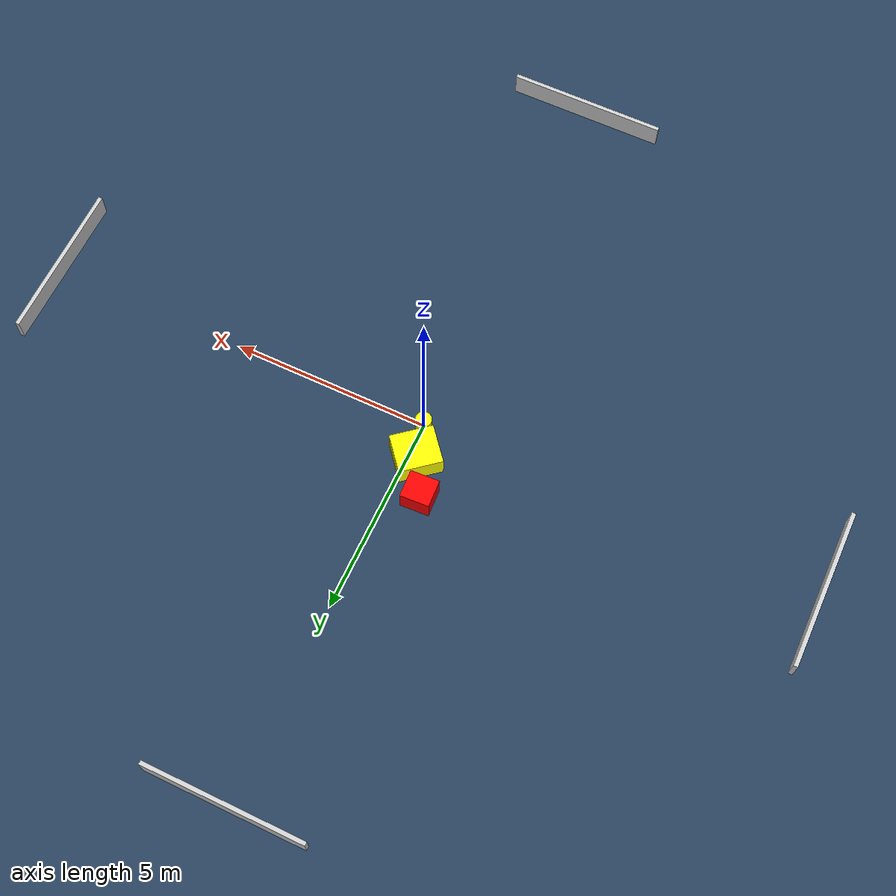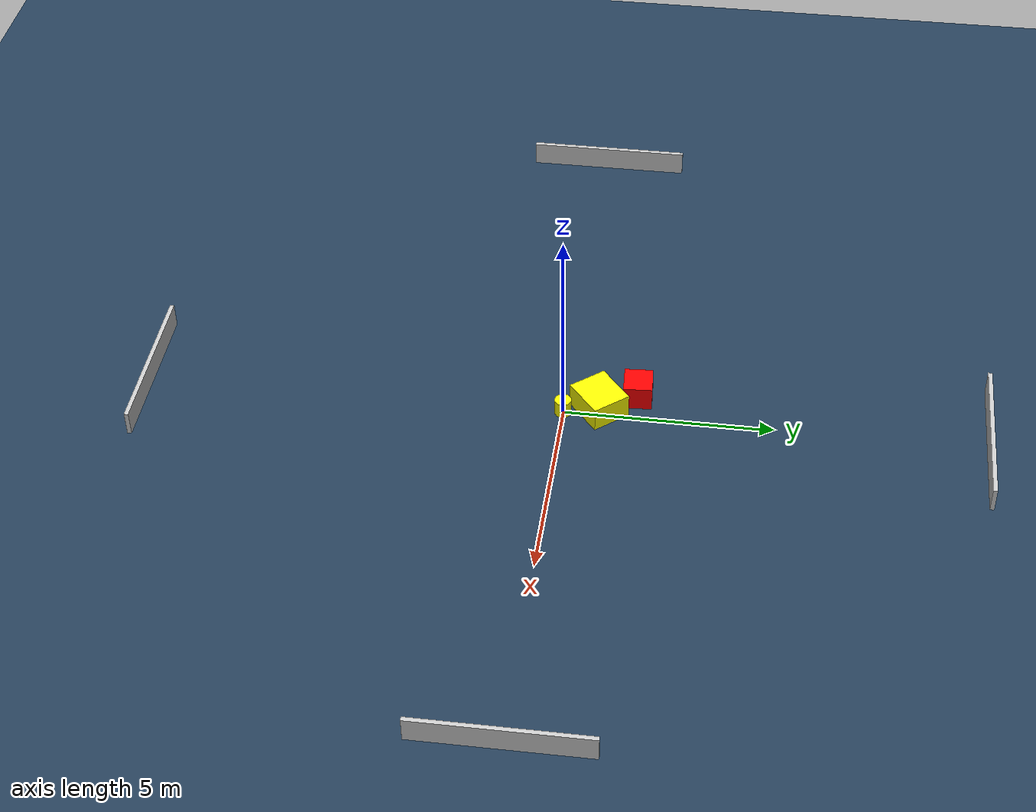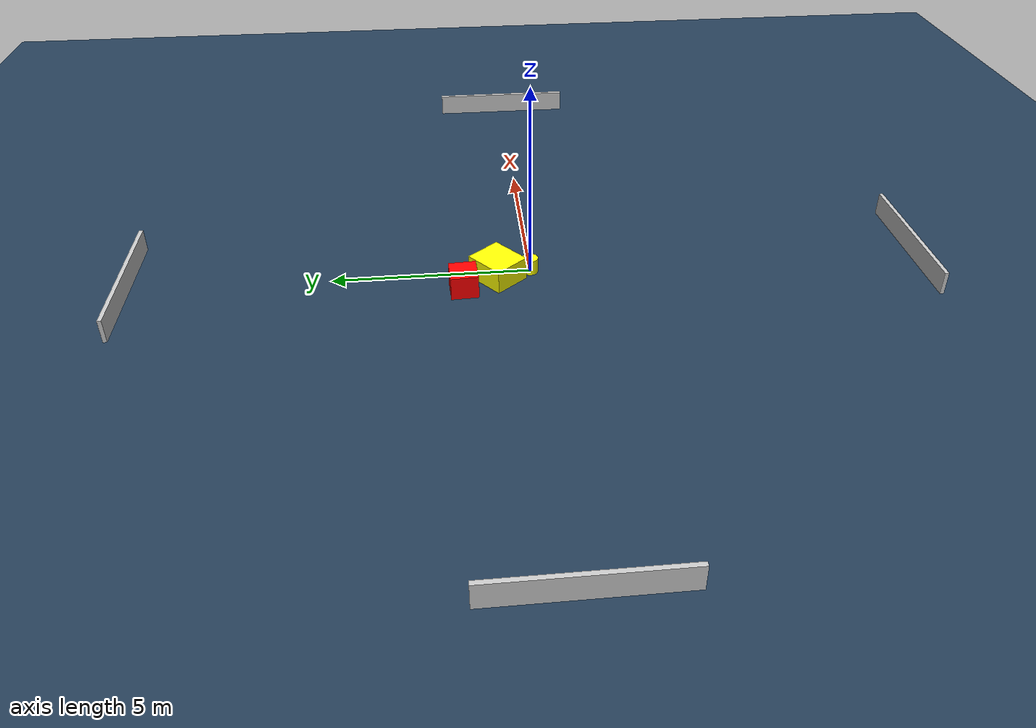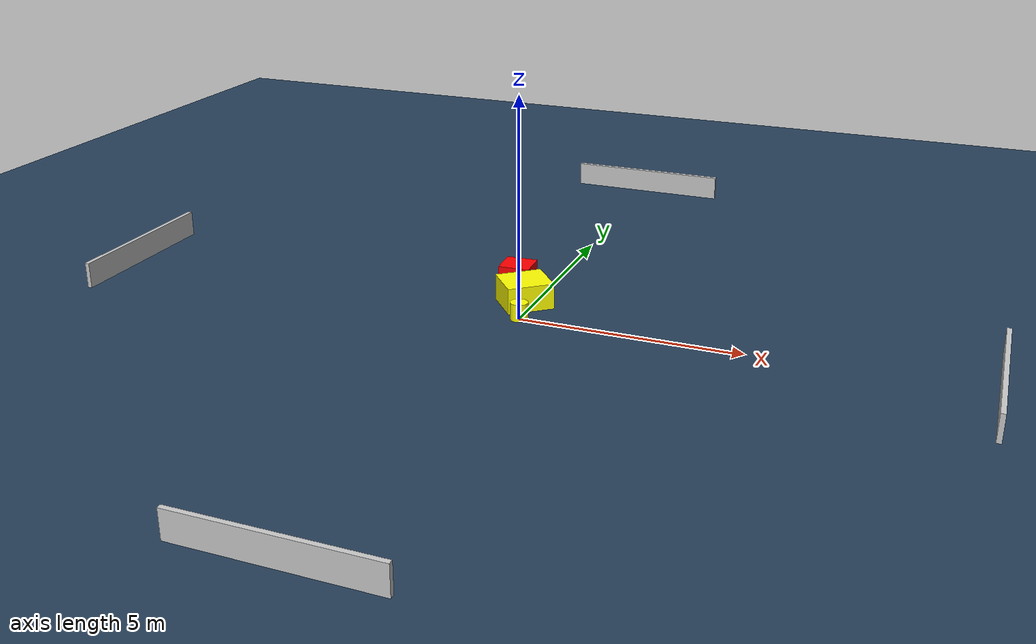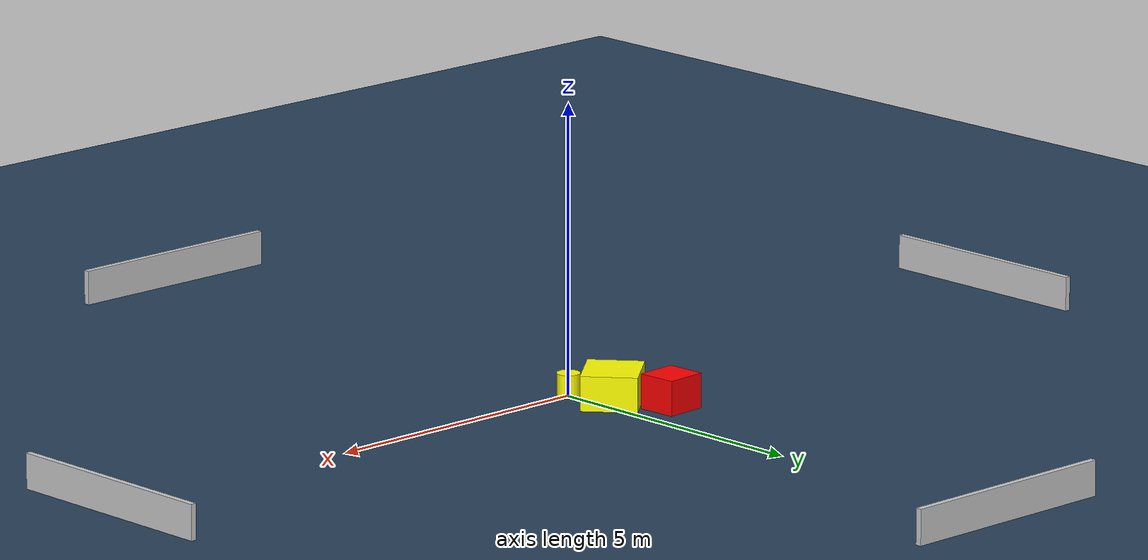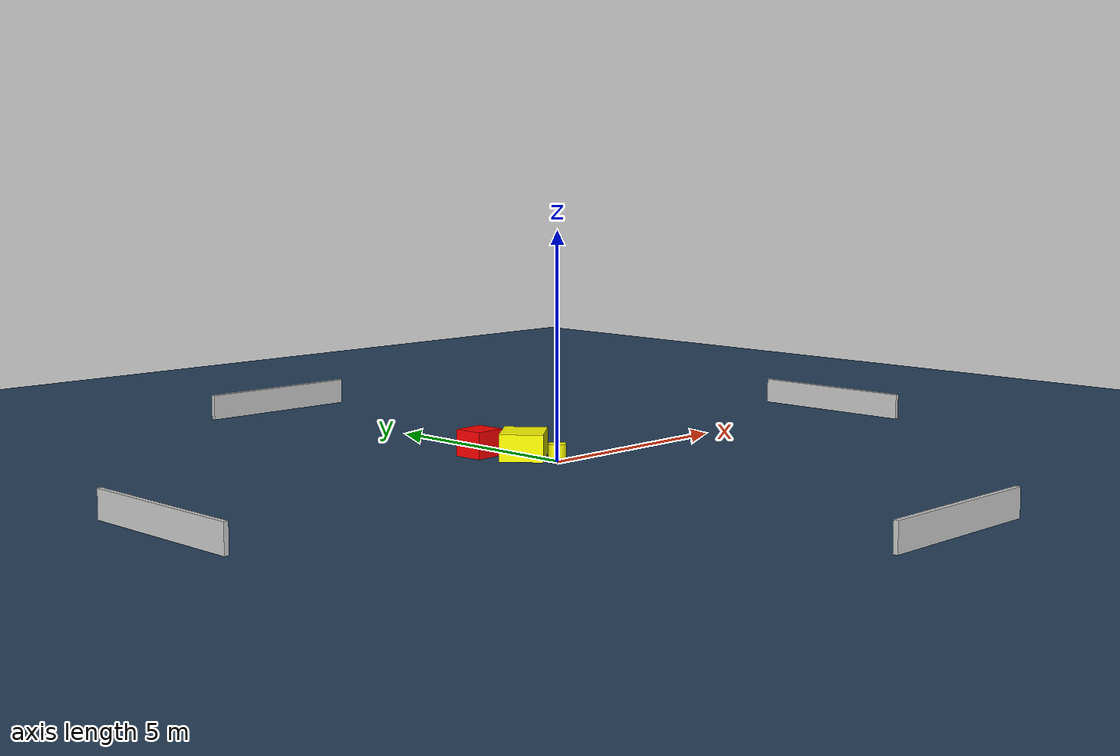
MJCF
<?xml version="1.0" ?>
<mujoco model="generated_environment">
  <option timestep="0.01" integrator="RK4" cone="elliptic"/>
  <default>
    <geom density="1"/>
  </default>
  <asset>
    <texture builtin="gradient" height="3072" name="skybox" rgb1="0.3 0.5 0.7" rgb2="0 0 0" type="skybox" width="512"/>
    <texture builtin="checker" height="300" name="groundplane" rgb1="0.2 0.3 0.4" rgb2="0.1 0.2 0.3" type="2d" width="300"/>
    <material name="groundplane" reflectance="0.2" texrepeat="5 5" texture="groundplane"/>
  </asset>
  <worldbody>
    <light dir="0 0 -1" directional="true" pos="0 0 1.5"/>
    <geom condim="3" friction="0.5 0.005 0.001" material="groundplane" name="floor" pos="0 0 0" size="0 0 0.05" type="plane"/>
    <body name="walls">
      <geom name="wall_1" condim="4" pos="-10.0 0.0 0.3" rgba="0.800000011920929 0.800000011920929 0.800000011920929 1.0" size="0.05 2.0 0.3" type="box"/>
      <geom name="wall_2" condim="4" pos="10.0 0.0 0.3" rgba="0.800000011920929 0.800000011920929 0.800000011920929 1.0" size="0.05 2.0 0.3" type="box"/>
      <geom name="wall_3" condim="4" pos="0.0 -10.0 0.3" rgba="0.800000011920929 0.800000011920929 0.800000011920929 1.0" size="2.0 0.05 0.3" type="box"/>
      <geom name="wall_4" condim="4" pos="0.0 10.0 0.3" rgba="0.800000011920929 0.800000011920929 0.800000011920929 1.0" size="2.0 0.05 0.3" type="box"/>
    </body>
    <body name="robot">
      <joint name="joint_x" type="slide" pos="0 0 0" axis="1 0 0"/>
      <joint name="joint_y" type="slide" pos="0 0 0" axis="0 1 0"/>
      <geom name="robot" type="cylinder" pos="0.0 0.0 0.2" size="0.2 0.2 0.0" mass="5.0" friction="1.0 0.005 0.0001" condim="4" rgba="1.0 1.0 0.0 1.0"/>
    </body>
    <body name="obstacle_1_movable">
      <geom name="obstacle_1_movable" condim="4" pos="-0.20282654999478555 0.8412398185342588 0.3" euler="0 0 39.6605818675092" friction="0.0 0.005 0.001" rgba="1.0 1.0 0.0 1.0" size="0.5393417728469105 0.4805219956223025 0.3" type="box" mass="0.1"/>
      <joint type="free"/>
    </body>
    <body name="obstacle_2_static">
      <geom name="obstacle_2_static" condim="4" pos="-0.7079268636962777 1.7150584512761207 0.3" euler="0 0 183.09512667067503" friction="0.0 0.005 0.001" rgba="1.0 0.0 0.0 1.0" size="0.36236145225988375 0.3424925433947056 0.3" type="box"/>
    </body>
  </worldbody>
  <actuator>
    <motor name="actuator_x" joint="joint_x" gear="1" ctrlrange="-1 1"/>
    <motor name="actuator_y" joint="joint_y" gear="1" ctrlrange="-1 1"/>
  </actuator>
</mujoco>
